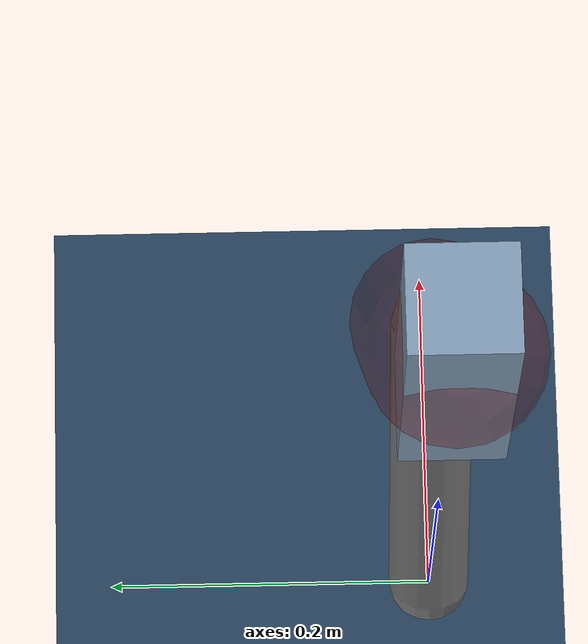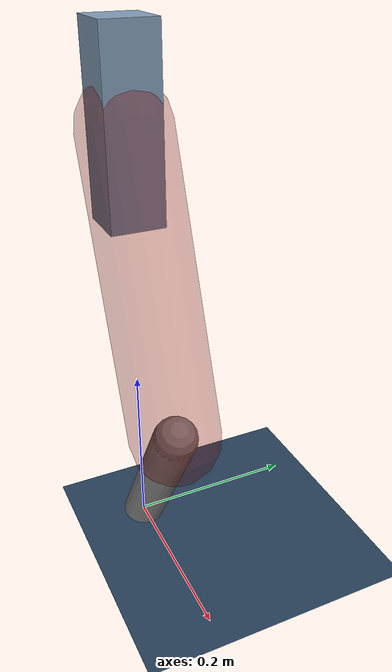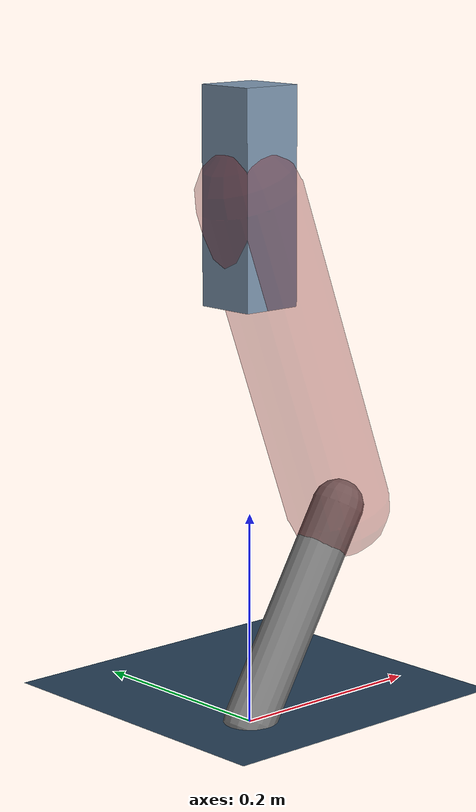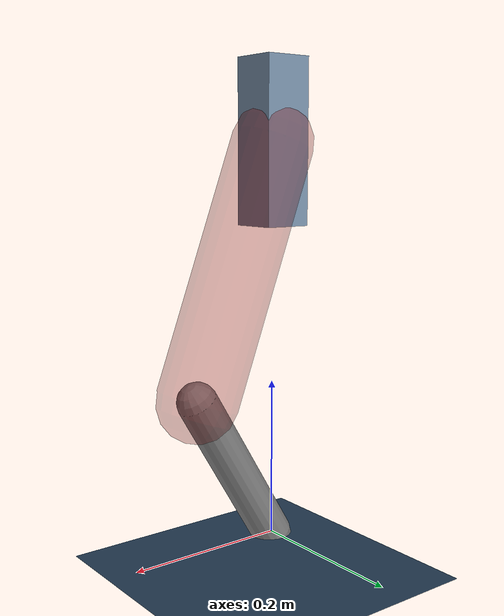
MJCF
<mujoco model="Hopper2D">
	<compiler inertiafromgeom="true" angle="radian" />
	<option timestep="0.001" integrator="implicit" cone="elliptic" solver="Newton" tolerance="1e-10" />

	<default>
		<geom contype="1" conaffinity="1" condim="3" friction="2 0.005 0.0001" solref="0.005 1" />
		<joint limited="true" damping="0.1" />
	</default>

	<asset>
		<texture name="skybox" type="skybox" builtin="gradient" rgb1=".4 .6 .8" rgb2="0 0 0" width="800" height="800" />
		<texture name="grid" type="2d" builtin="checker" rgb1=".1 .2 .3" rgb2=".2 .3 .4" width="300" height="300" mark="edge" markrgb=".2 .3 .4" />
		<material name="ground" texture="grid" texrepeat="1 1" texuniform="true" reflectance="0.1" />
		<material name="leg" rgba="0.5 0.6 0.7 1" />
	</asset>

	<worldbody>

		<geom name="floor" type="plane" size="5 5 0.25" material="ground" />

		<light directional="false" diffuse="0.8 0.8 0.8" specular="0.3 0.3 0.3" pos="0 0 2" dir="0 0 -1" />
		<light mode="targetbodycom" target="base" directional="false" diffuse="0.8 0.8 0.8" specular="0.3 0.3 0.3" pos="0 0 2" dir="0 0 -1" />

		<camera name="fixed" pos="0 -2 1" xyaxes="1 0 0 0 0 1" />
		<camera name="tracking" mode="trackcom" pos="0 -3 1" />

		<body name="root" pos="0 0 0.4947715597569353">
			<joint name="slide_x" type="slide" axis="1 0 0" range="-100 100" />
			<joint name="slide_z" type="slide" axis="0 0 1" range="0 10" />

			<body name="base" pos="0 0 0">
				<geom name="torso" type="box" size="0.03 0.03 0.1" mass="2.766" material="leg" />

				<body name="link1" pos="0 0 0" euler="0 1.2146299068544364 0">
					<joint type="hinge" axis="0 -1 0" pos="0 0 0" name="hinge1" limited="true" range="-3.14 3.14" stiffness="0" damping="0.1" />
					<geom name="thigh" type="capsule" fromto="0 0 0 0.3252575269092947 0 0" size="0.05" rgba="0.5 0 0 0.3" mass="1.057721075346025" />

					<body name="link2" pos="0.3252575269092947 0 0" euler="0 0.8944764112813528 0">
						<joint type="hinge" axis="0 -1 0" pos="0 0 0" name="hinge2" limited="true" range="-3.14 3.14" stiffness="0" damping="0.1" />
						<geom name="shank" type="capsule" fromto="0 0 0 0.221211614159273 0 0" size="0.025" mass="0.41866929132741837" />

					</body>
				</body>
			</body>
		</body>
	</worldbody>

	<actuator>
		<motor name="torque1" joint="hinge1" ctrlrange="-44.770095967397005 44.770095967397005" ctrllimited="true" gear="1" />
		<motor name="torque2" joint="hinge2" ctrlrange="-157.3690546418497 157.3690546418497" ctrllimited="true" gear="1" />
	</actuator>
</mujoco>
